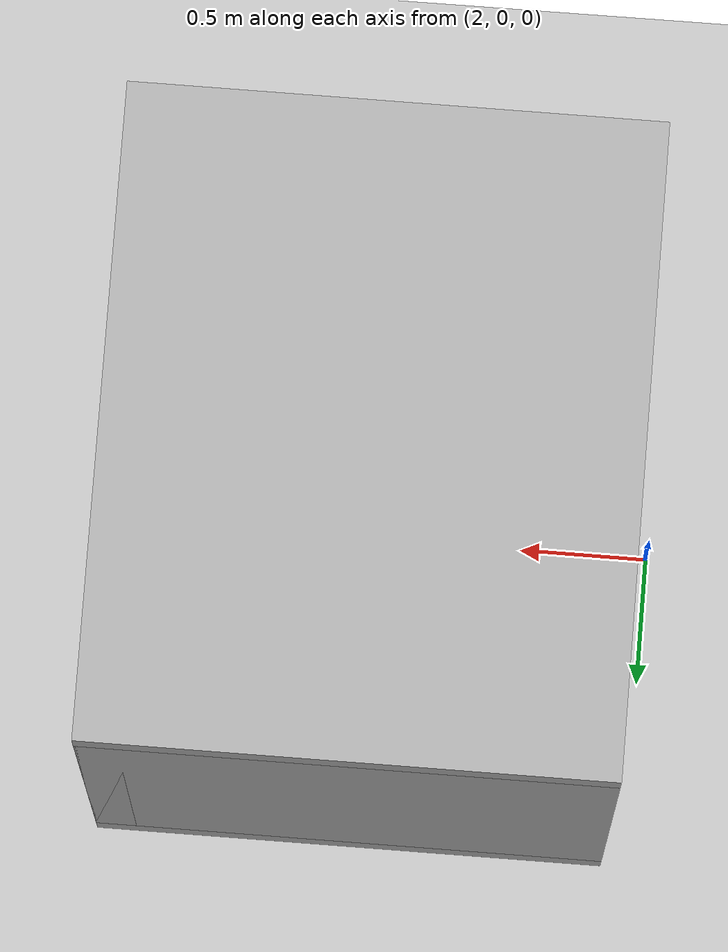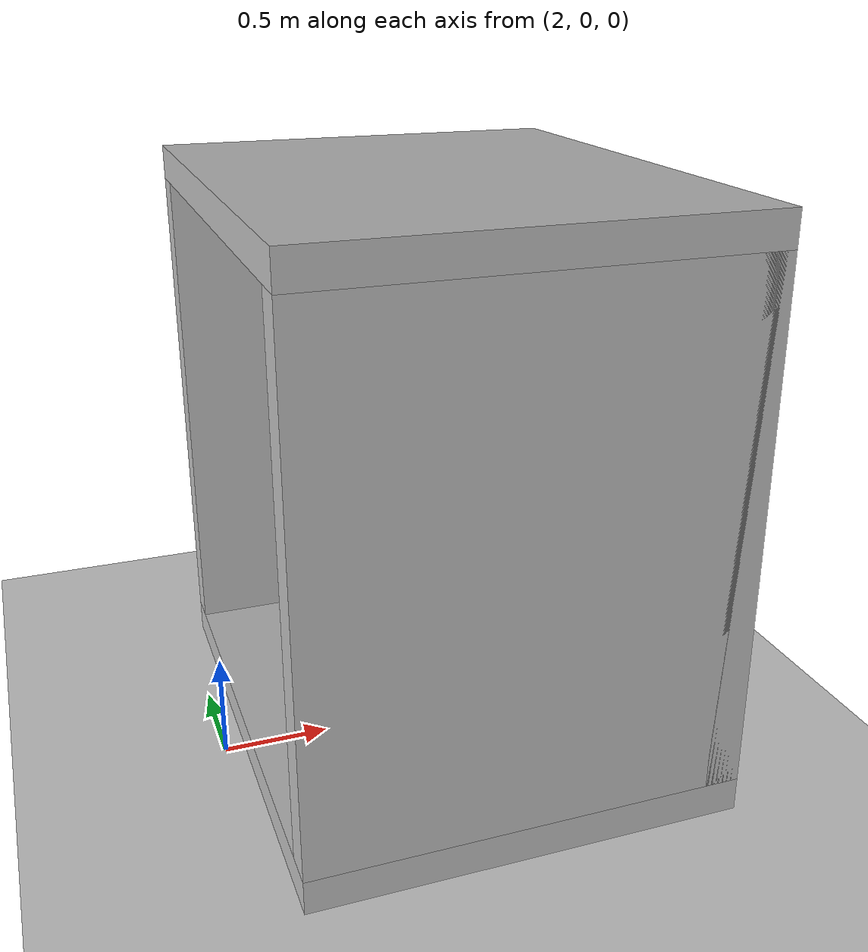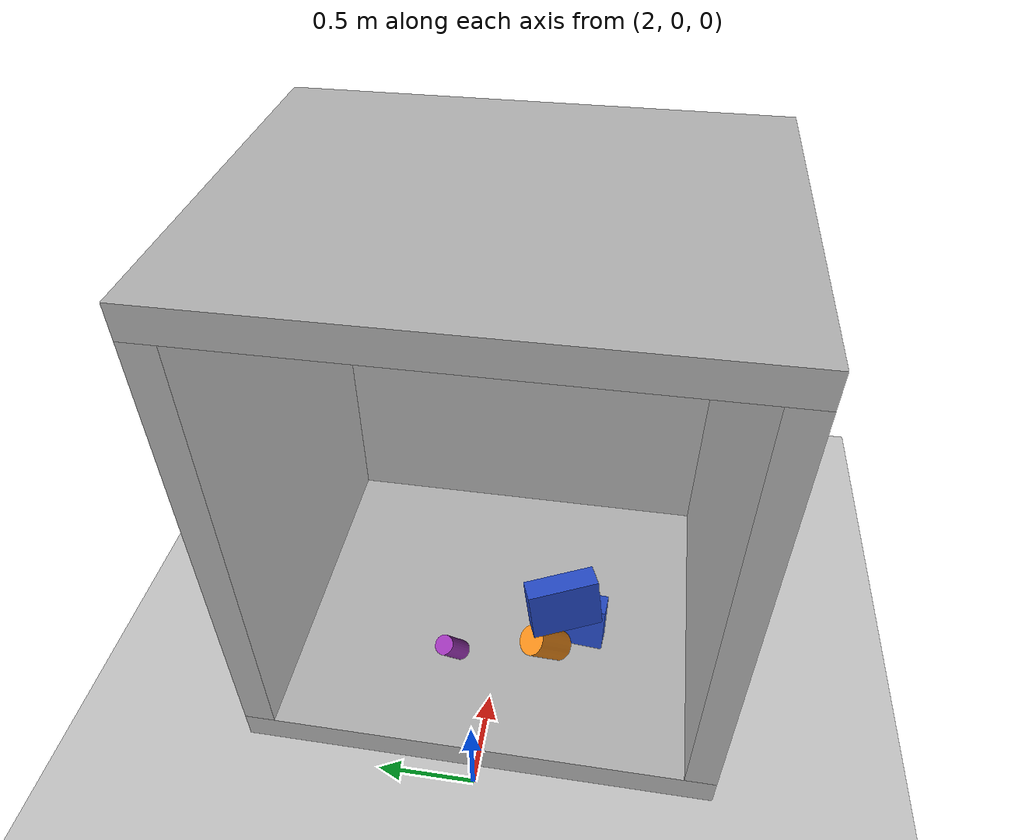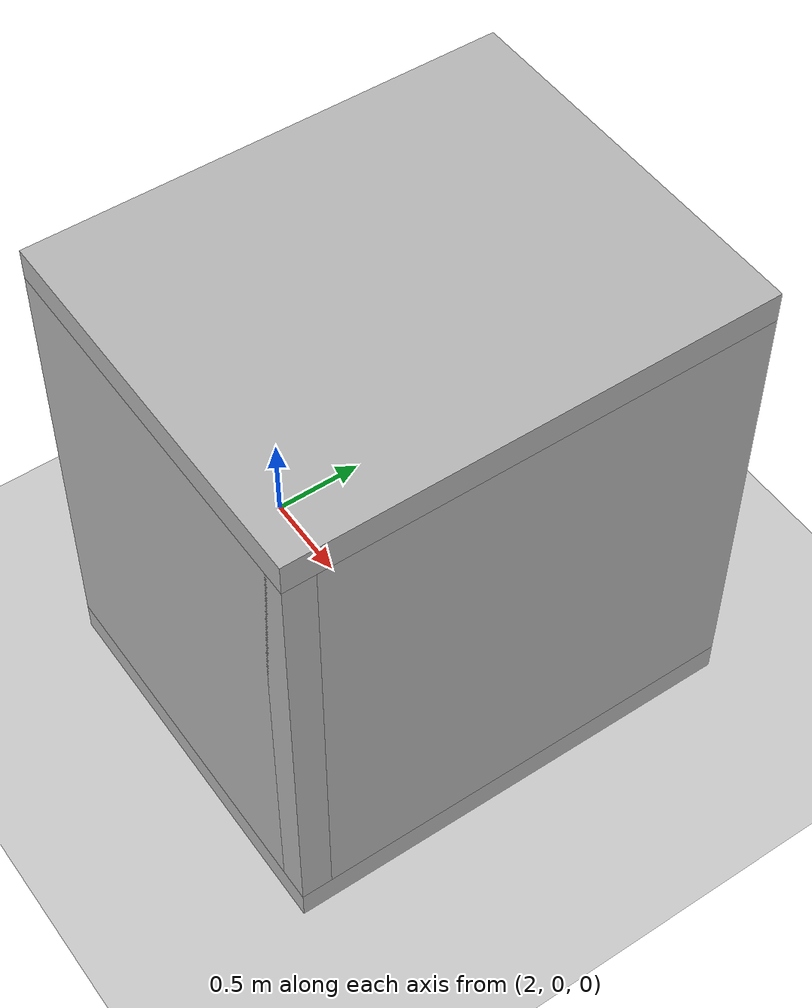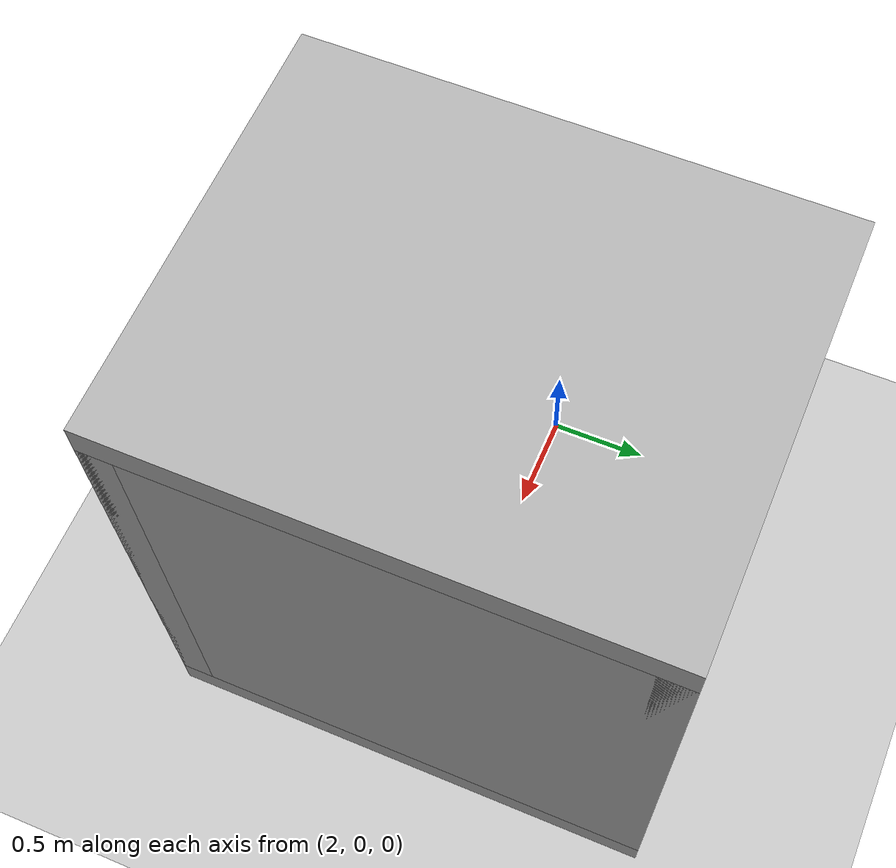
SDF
<sdf version="1.6">
 <world name="default">
  <light name="sun" type="directional">
   <pose>0 0 10 0 -0 0</pose>
   <diffuse>0.8 0.8 0.8 1</diffuse>
   <specular>0.1 0.1 0.1 1</specular>
   <attenuation>
    <range>1000</range>
    <constant>0.9</constant>
    <linear>0.01</linear>
    <quadratic>0.001</quadratic>
   </attenuation>
   <direction>-0.5 0.5 -1</direction>
  </light>
  <model name="ground_plane">
   <static>1</static>
   <link name="link">
    <collision name="collision">
     <geometry><plane><normal>0 0 1</normal><size>100 100</size></plane></geometry>
     <surface><friction><ode><mu>100</mu><mu2>50</mu2></ode></friction></surface>
    </collision>
    <visual name="visual">
     <cast_shadows>0</cast_shadows>
     <geometry><plane><normal>0 0 1</normal><size>100 100</size></plane></geometry>
     <material>
      <script><uri>file://media/materials/scripts/gazebo.material</uri><name>Gazebo/Grey</name></script>
     </material>
    </visual>
   </link>
  </model>
  <physics name="default_physics" default="0" type="ode">
   <real_time_update_rate>0</real_time_update_rate>
   <max_step_size>0.001</max_step_size>
   <real_time_factor>1</real_time_factor>
  </physics>
  <gravity>0 0 -9.8</gravity>
  <magnetic_field>6e-06 2.3e-05 -4.2e-05</magnetic_field>
  <atmosphere type="adiabatic"/>
  <scene><ambient>0.4 0.4 0.4 1</ambient><background>0.7 0.7 0.7 1</background><shadows>1</shadows></scene>
  <spherical_coordinates>
   <surface_model>EARTH_WGS84</surface_model>
   <latitude_deg>0</latitude_deg>
   <longitude_deg>0</longitude_deg>
   <elevation>0</elevation>
   <heading_deg>0</heading_deg>
  </spherical_coordinates>
  <model name="container">
   <link name="container">
    <inertial>
     <pose>0.22439 0 1.64098 0 -0 0</pose>
     <mass>205</mass>
     <inertia>
      <ixx>329.883</ixx>
      <ixy>1.59439e-15</ixy>
      <ixz>12.9249</ixz>
      <iyy>229.817</iyy>
      <iyz>1.16598e-14</iyz>
      <izz>267.609</izz>
     </inertia>
    </inertial>
    <collision name="container_back_collision">
     <pose>0.92 0 1.36 0 -0 0</pose>
     <geometry><box><size>0.16 2.45 2.4</size></box></geometry>
    </collision>
    <collision name="container_bottom_collision_1">
     <pose>0 0 0.08 0 -0 0</pose>
     <geometry><box><size>2 2.45 0.16</size></box></geometry>
    </collision>
    <collision name="container_left_collision_2">
     <pose>0 1.145 1.36 0 -0 0</pose>
     <geometry><box><size>2 0.16 2.4</size></box></geometry>
    </collision>
    <collision name="container_right_collision_3">
     <pose>0 -1.145 1.36 0 -0 0</pose>
     <geometry><box><size>2 0.16 2.4</size></box></geometry>
    </collision>
    <collision name="container_top_collision_4">
     <pose>0 0 2.64 0 -0 0</pose>
     <geometry><box><size>2 2.45 0.16</size></box></geometry>
    </collision>
    <visual name="container_back_visual">
     <pose>0.92 0 1.36 0 -0 0</pose>
     <geometry><box><size>0.16 2.45 2.4</size></box></geometry>
    </visual>
    <visual name="container_bottom_visual_1">
     <pose>0 0 0.08 0 -0 0</pose>
     <geometry><box><size>2 2.45 0.16</size></box></geometry>
    </visual>
    <visual name="container_left_visual_2">
     <pose>0 1.145 1.36 0 -0 0</pose>
     <geometry><box><size>2 0.16 2.4</size></box></geometry>
    </visual>
    <visual name="container_right_visual_3">
     <pose>0 -1.145 1.36 0 -0 0</pose>
     <geometry><box><size>2 0.16 2.4</size></box></geometry>
    </visual>
    <visual name="container_top_visual_4">
     <pose>0 0 2.64 0 -0 0</pose>
     <geometry><box><size>2 2.45 0.16</size></box></geometry>
    </visual>
   </link>
   <pose>3.08998 0.008979 -3e-06 -2e-06 -1e-06 -0.002565</pose>
  </model>
  <model name="roblog-dhl-box-blue-simple-0-2728">
   <link name="link">
    <inertial>
     <mass>0.25</mass>
     <inertia>
      <ixx>0.00218083</ixx>
      <ixy>0</ixy>
      <ixz>0</ixz>
      <iyy>0.00473308</iyy>
      <iyz>0</iyz>
      <izz>0.00321375</izz>
     </inertia>
    </inertial>
    <collision name="link_collision"><geometry><box><size>0.372 0.126 0.298</size></box></geometry></collision>
    <visual name="link_visual">
     <geometry><box><size>0.372 0.126 0.298</size></box></geometry>
     <material>
      <script><name>Gazebo/Blue</name><uri>file://media/materials/scripts/gazebo.material</uri></script>
     </material>
    </visual>
   </link>
   <pose>2.88544 -0.404917 0.313909 -0.052142 -0.001733 -1.65697</pose>
  </model>
  <model name="roblog-dhl-box-blue-simple-1-2729">
   <link name="link">
    <inertial>
     <mass>0.25</mass>
     <inertia>
      <ixx>0.00218083</ixx>
      <ixy>0</ixy>
      <ixz>0</ixz>
      <iyy>0.00473308</iyy>
      <iyz>0</iyz>
      <izz>0.00321375</izz>
     </inertia>
    </inertial>
    <collision name="link_collision"><geometry><box><size>0.372 0.126 0.298</size></box></geometry></collision>
    <visual name="link_visual">
     <geometry><box><size>0.372 0.126 0.298</size></box></geometry>
     <material>
      <script><name>Gazebo/Blue</name><uri>file://media/materials/scripts/gazebo.material</uri></script>
     </material>
    </visual>
   </link>
   <pose>2.74396 -0.357961 0.609764 -0.091776 -0.10933 -1.21364</pose>
  </model>
  <model name="roblog-vanish-detergent-simple-2-2730">
   <link name="link">
    <inertial>
     <mass>0.08</mass>
     <inertia>
      <ixx>0.000324987</ixx>
      <ixy>0</ixy>
      <ixz>0</ixz>
      <iyy>0.000324987</iyy>
      <iyz>0</iyz>
      <izz>0.00011664</izz>
     </inertia>
    </inertial>
    <collision name="link_collision">
     <geometry><cylinder><length>0.2</length><radius>0.054</radius></cylinder></geometry>
    </collision>
    <visual name="link_visual">
     <geometry><cylinder><length>0.2</length><radius>0.054</radius></cylinder></geometry>
     <material>
      <script><name>Gazebo/PurpleGlow</name><uri>file://media/materials/scripts/gazebo.material</uri></script>
     </material>
    </visual>
    <velocity_decay><linear>0.005</linear><angular>0.005</angular></velocity_decay>
   </link>
   <pose>2.61015 0.222111 0.272671 -0.093289 -0.620227 -0.466626</pose>
  </model>
  <model name="roblog-maisels-barrel-simple-3-2731">
   <link name="link">
    <inertial>
     <mass>0.54</mass>
     <inertia>
      <ixx>0.00354312</ixx>
      <ixy>0</ixy>
      <ixz>0</ixz>
      <iyy>0.00354312</iyy>
      <iyz>0</iyz>
      <izz>0.00181548</izz>
     </inertia>
    </inertial>
    <collision name="link_collision">
     <geometry><cylinder><length>0.242</length><radius>0.082</radius></cylinder></geometry>
    </collision>
    <visual name="link_visual">
     <geometry><cylinder><length>0.242</length><radius>0.082</radius></cylinder></geometry>
     <material>
      <script><name>Gazebo/Orange</name><uri>file://media/materials/scripts/gazebo.material</uri></script>
     </material>
    </visual>
    <velocity_decay><linear>0.005</linear><angular>0.005</angular></velocity_decay>
   </link>
   <pose>2.69778 -0.279747 0.301619 -0.266935 -0.812615 -0.587177</pose>
  </model>
 </world>
</sdf>
